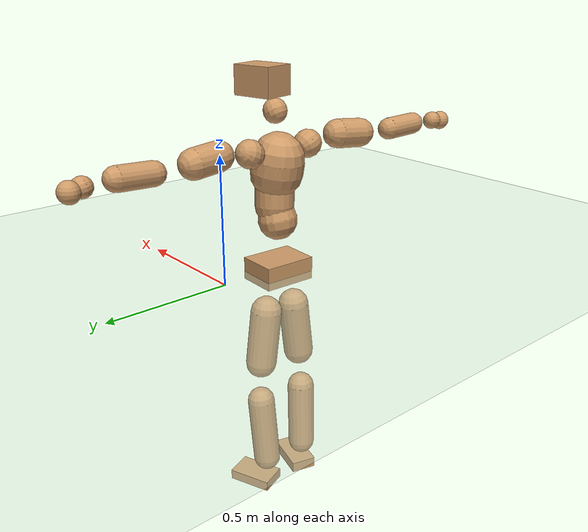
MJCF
<mujoco model="humanoid">
  <compiler coordinate="local" angle="radian"/>
  <default>
    <joint damping="0.0" armature="0.01" stiffness="0.0" limited="true"/>
    <geom conaffinity="1" condim="3" contype="7" margin="0.001" rgba="0.8 0.6 .4 1"/>
  </default>
  <asset>
    <texture type="skybox" builtin="gradient" rgb1=".4 .5 .6" rgb2="0 0 0" width="100" height="100"/>
    <texture builtin="flat" height="1278" mark="cross" markrgb="1 1 1" name="texgeom" random="0.01" rgb1="0.8 0.6 0.4" rgb2="0.8 0.6 0.4" type="cube" width="127"/>
    <texture builtin="checker" height="100" name="texplane" rgb1="0 0 0" rgb2="0.8 0.8 0.8" type="2d" width="100"/>
    <material name="MatPlane" reflectance="0.5" shininess="1" specular="1" texrepeat="60 60" texture="texplane"/>
    <material name="geom" texture="texgeom" texuniform="true"/>
  </asset>
  <worldbody>
    <light cutoff="100" diffuse="1 1 1" dir="-0 0 -1.3" directional="true" exponent="1" pos="0 0 1.3" specular=".1 .1 .1"/>
    <geom conaffinity="1" condim="3" name="floor" pos="0 0 0" rgba="0.8 0.9 0.8 1" size="100 100 .2" type="plane" material="MatPlane"/>
    <body name="Pelvis" pos="-0.0012 -0.2491 0.0201">
      <freejoint name="Pelvis"/>
      <geom type="box" contype="1" conaffinity="1" density="5359.375108" pos="-0.0127 0.0005 -0.0087" size="0.081 0.107 0.0452" quat="0.9998 0.0000 0.0000 -0.0201" name="Pelvis"/>
      <body name="L_Hip" pos="-0.0226 0.0593 -0.0847">
        <joint name="L_Hip_x" type="hinge" pos="0 0 0" axis="1 0 0" stiffness="1600" damping="160" armature="0.02" range="-180.0000 180.0000"/>
        <joint name="L_Hip_y" type="hinge" pos="0 0 0" axis="0 1 0" stiffness="1600" damping="160" armature="0.02" range="-180.0000 180.0000"/>
        <joint name="L_Hip_z" type="hinge" pos="0 0 0" axis="0 0 1" stiffness="1600" damping="160" armature="0.02" range="-180.0000 180.0000"/>
        <geom type="capsule" contype="1" conaffinity="1" density="2040.816327" size="0.0625" fromto="0.0019 0.0109 -0.0918 0.0066 0.0378 -0.3197" name="L_Hip"/>
        <body name="L_Knee" pos="0.0086 0.0487 -0.4115">
          <joint name="L_Knee_x" type="hinge" pos="0 0 0" axis="1 0 0" stiffness="1600" damping="160" armature="0.02" range="-180.0000 180.0000"/>
          <joint name="L_Knee_y" type="hinge" pos="0 0 0" axis="0 1 0" stiffness="1600" damping="160" armature="0.02" range="-180.0000 180.0000"/>
          <joint name="L_Knee_z" type="hinge" pos="0 0 0" axis="0 0 1" stiffness="1600" damping="160" armature="0.02" range="-180.0000 180.0000"/>
          <geom type="capsule" contype="1" conaffinity="1" density="1234.567901" size="0.0561" fromto="-0.0071 -0.0028 -0.0858 -0.0302 -0.0118 -0.3657" name="L_Knee"/>
          <body name="L_Ankle" pos="-0.0373 -0.0146 -0.4515">
            <joint name="L_Ankle_x" type="hinge" pos="0 0 0" axis="1 0 0" stiffness="1600" damping="160" armature="0.02" range="-180.0000 180.0000"/>
            <joint name="L_Ankle_y" type="hinge" pos="0 0 0" axis="0 1 0" stiffness="1600" damping="160" armature="0.02" range="-180.0000 180.0000"/>
            <joint name="L_Ankle_z" type="hinge" pos="0 0 0" axis="0 0 1" stiffness="1600" damping="160" armature="0.02" range="-180.0000 180.0000"/>
            <geom type="box" contype="1" conaffinity="1" density="999.999995" pos="0.0635 0.0243 -0.0323" size="0.0915 0.0564 0.0215" quat="0.9833 0.0000 0.0000 0.1821" name="L_Ankle"/>
            <body name="L_Toe" pos="0.127 0.0487 -0.0647">
              <joint name="L_Toe_x" type="hinge" pos="0 0 0" axis="1 0 0" stiffness="1000" damping="100" armature="0.02" range="-180.0000 180.0000"/>
              <joint name="L_Toe_y" type="hinge" pos="0 0 0" axis="0 1 0" stiffness="1000" damping="100" armature="0.02" range="-180.0000 180.0000"/>
              <joint name="L_Toe_z" type="hinge" pos="0 0 0" axis="0 0 1" stiffness="1000" damping="100" armature="0.02" range="-180.0000 180.0000"/>
              <geom type="box" contype="1" conaffinity="1" density="7786085.638447" pos="0.0000 0.0000 0.0333" size="0.0011 0.0027 0.0011" quat="0.9825 0.0000 0.0000 0.1862" name="L_Toe"/>
            </body>
          </body>
        </body>
      </body>
      <body name="R_Hip" pos="-0.02 -0.0607 -0.0923">
        <joint name="R_Hip_x" type="hinge" pos="0 0 0" axis="1 0 0" stiffness="1600" damping="160" armature="0.02" range="-180.0000 180.0000"/>
        <joint name="R_Hip_y" type="hinge" pos="0 0 0" axis="0 1 0" stiffness="1600" damping="160" armature="0.02" range="-180.0000 180.0000"/>
        <joint name="R_Hip_z" type="hinge" pos="0 0 0" axis="0 0 1" stiffness="1600" damping="160" armature="0.02" range="-180.0000 180.0000"/>
        <geom type="capsule" contype="1" conaffinity="1" density="2040.816327" size="0.0618" fromto="-0.0011 -0.0110 -0.0912 -0.0038 -0.0380 -0.3162" name="R_Hip"/>
        <body name="R_Knee" pos="-0.0049 -0.049 -0.4073">
          <joint name="R_Knee_x" type="hinge" pos="0 0 0" axis="1 0 0" stiffness="1600" damping="160" armature="0.02" range="-180.0000 180.0000"/>
          <joint name="R_Knee_y" type="hinge" pos="0 0 0" axis="0 1 0" stiffness="1600" damping="160" armature="0.02" range="-180.0000 180.0000"/>
          <joint name="R_Knee_z" type="hinge" pos="0 0 0" axis="0 0 1" stiffness="1600" damping="160" armature="0.02" range="-180.0000 180.0000"/>
          <geom type="capsule" contype="1" conaffinity="1" density="1234.567901" size="0.0564" fromto="-0.0067 0.0038 -0.0861 -0.0278 0.0158 -0.3587" name="R_Knee"/>
          <body name="R_Ankle" pos="-0.0345 0.0196 -0.4448">
            <joint name="R_Ankle_x" type="hinge" pos="0 0 0" axis="1 0 0" stiffness="1600" damping="160" armature="0.02" range="-180.0000 180.0000"/>
            <joint name="R_Ankle_y" type="hinge" pos="0 0 0" axis="0 1 0" stiffness="1600" damping="160" armature="0.02" range="-180.0000 180.0000"/>
            <joint name="R_Ankle_z" type="hinge" pos="0 0 0" axis="0 0 1" stiffness="1600" damping="160" armature="0.02" range="-180.0000 180.0000"/>
            <geom type="box" contype="1" conaffinity="1" density="1000.000005" pos="0.0684 -0.0187 -0.0335" size="0.0957 0.0532 0.0227" quat="0.9911 0.0000 0.0000 -0.1329" name="R_Ankle"/>
            <body name="R_Toe" pos="0.1367 -0.0373 -0.067">
              <joint name="R_Toe_x" type="hinge" pos="0 0 0" axis="1 0 0" stiffness="1000" damping="100" armature="0.02" range="-180.0000 180.0000"/>
              <joint name="R_Toe_y" type="hinge" pos="0 0 0" axis="0 1 0" stiffness="1000" damping="100" armature="0.02" range="-180.0000 180.0000"/>
              <joint name="R_Toe_z" type="hinge" pos="0 0 0" axis="0 0 1" stiffness="1000" damping="100" armature="0.02" range="-180.0000 180.0000"/>
              <geom type="box" contype="1" conaffinity="1" density="8234236.923361" pos="0.0000 0.0000 0.0345" size="0.0011 0.0026 0.0012" quat="0.9922 0.0000 0.0000 -0.1244" name="R_Toe"/>
            </body>
          </body>
        </body>
      </body>
      <body name="Torso" pos="-0.0337 0.0045 0.125">
        <joint name="Torso_x" type="hinge" pos="0 0 0" axis="1 0 0" stiffness="2000" damping="200" armature="0.02" range="-180.0000 180.0000"/>
        <joint name="Torso_y" type="hinge" pos="0 0 0" axis="0 1 0" stiffness="2000" damping="200" armature="0.02" range="-180.0000 180.0000"/>
        <joint name="Torso_z" type="hinge" pos="0 0 0" axis="0 0 1" stiffness="2000" damping="200" armature="0.02" range="-180.0000 180.0000"/>
        <geom type="capsule" contype="1" conaffinity="1" density="2040.816327" size="0.0768" fromto="0.0159 0.0023 0.0751 0.0147 0.0021 0.0696" name="Torso"/>
        <body name="Spine" pos="0.0306 0.0044 0.1447">
          <joint name="Spine_x" type="hinge" pos="0 0 0" axis="1 0 0" stiffness="2000" damping="200" armature="0.02" range="-180.0000 180.0000"/>
          <joint name="Spine_y" type="hinge" pos="0 0 0" axis="0 1 0" stiffness="2000" damping="200" armature="0.02" range="-180.0000 180.0000"/>
          <joint name="Spine_z" type="hinge" pos="0 0 0" axis="0 0 1" stiffness="2000" damping="200" armature="0.02" range="-180.0000 180.0000"/>
          <geom type="capsule" contype="1" conaffinity="1" density="2040.816327" size="0.0768" fromto="0.0020 -0.0035 0.0767 -0.0005 0.0008 -0.0175" name="Spine"/>
          <body name="Chest" pos="0.0015 -0.0027 0.0592">
            <joint name="Chest_x" type="hinge" pos="0 0 0" axis="1 0 0" stiffness="2000" damping="200" armature="0.02" range="-180.0000 180.0000"/>
            <joint name="Chest_y" type="hinge" pos="0 0 0" axis="0 1 0" stiffness="2000" damping="200" armature="0.02" range="-180.0000 180.0000"/>
            <joint name="Chest_z" type="hinge" pos="0 0 0" axis="0 0 1" stiffness="2000" damping="200" armature="0.02" range="-180.0000 180.0000"/>
            <geom type="capsule" contype="1" conaffinity="1" density="2040.816327" size="0.102" fromto="-0.0146 -0.0056 0.1008 -0.0076 -0.0029 0.0525" name="Chest"/>
            <body name="Neck" pos="-0.0253 -0.0134 0.2245">
              <joint name="Neck_x" type="hinge" pos="0 0 0" axis="1 0 0" stiffness="1000" damping="100" armature="0.02" range="-180.0000 180.0000"/>
              <joint name="Neck_y" type="hinge" pos="0 0 0" axis="0 1 0" stiffness="1000" damping="100" armature="0.02" range="-180.0000 180.0000"/>
              <joint name="Neck_z" type="hinge" pos="0 0 0" axis="0 0 1" stiffness="1000" damping="100" armature="0.02" range="-180.0000 180.0000"/>
              <geom type="capsule" contype="1" conaffinity="1" density="1000" size="0.0457" fromto="0.0284 0.0051 0.0510 0.0294 0.0053 0.0528" name="Neck"/>
              <body name="Head" pos="0.0578 0.0104 0.1038">
                <joint name="Head_x" type="hinge" pos="0 0 0" axis="1 0 0" stiffness="1000" damping="100" armature="0.02" range="-180.0000 180.0000"/>
                <joint name="Head_y" type="hinge" pos="0 0 0" axis="0 1 0" stiffness="1000" damping="100" armature="0.02" range="-180.0000 180.0000"/>
                <joint name="Head_z" type="hinge" pos="0 0 0" axis="0 0 1" stiffness="1000" damping="100" armature="0.02" range="-180.0000 180.0000"/>
                <geom type="box" contype="1" conaffinity="1" density="2249.9998" pos="0.0299 0.0062 0.0529" size="0.0804 0.0636 0.055" quat="0.9947 0.0000 0.0000 0.1024" name="Head"/>
              </body>
            </body>
            <body name="L_Thorax" pos="-0.0182 0.0726 0.1184">
              <joint name="L_Thorax_x" type="hinge" pos="0 0 0" axis="1 0 0" stiffness="1000" damping="100" armature="0.02" range="-180.0000 180.0000"/>
              <joint name="L_Thorax_y" type="hinge" pos="0 0 0" axis="0 1 0" stiffness="1000" damping="100" armature="0.02" range="-180.0000 180.0000"/>
              <joint name="L_Thorax_z" type="hinge" pos="0 0 0" axis="0 0 1" stiffness="1000" damping="100" armature="0.02" range="-180.0000 180.0000"/>
              <geom type="capsule" contype="1" conaffinity="1" density="1000" size="0.0536" fromto="-0.0084 0.0605 0.0245 -0.0087 0.0623 0.0253" name="L_Thorax"/>
              <body name="L_Shoulder" pos="-0.0171 0.1228 0.0498">
                <joint name="L_Shoulder_x" type="hinge" pos="0 0 0" axis="1 0 0" stiffness="1000" damping="100" armature="0.02" range="-720.0000 720.0000"/>
                <joint name="L_Shoulder_y" type="hinge" pos="0 0 0" axis="0 1 0" stiffness="1000" damping="100" armature="0.02" range="-720.0000 720.0000"/>
                <joint name="L_Shoulder_z" type="hinge" pos="0 0 0" axis="0 0 1" stiffness="1000" damping="100" armature="0.02" range="-720.0000 720.0000"/>
                <geom type="capsule" contype="1" conaffinity="1" density="1000" size="0.055" fromto="-0.0066 0.0845 -0.0063 -0.0150 0.1931 -0.0144" name="L_Shoulder"/>
                <body name="L_Elbow" pos="-0.0216 0.2777 -0.0207">
                  <joint name="L_Elbow_x" type="hinge" pos="0 0 0" axis="1 0 0" stiffness="1000" damping="100" armature="0.02" range="-720.0000 720.0000"/>
                  <joint name="L_Elbow_y" type="hinge" pos="0 0 0" axis="0 1 0" stiffness="1000" damping="100" armature="0.02" range="-720.0000 720.0000"/>
                  <joint name="L_Elbow_z" type="hinge" pos="0 0 0" axis="0 0 1" stiffness="1000" damping="100" armature="0.02" range="-720.0000 720.0000"/>
                  <geom type="capsule" contype="1" conaffinity="1" density="1000" size="0.0426" fromto="-0.0020 0.0725 0.0036 -0.0058 0.2084 0.0103" name="L_Elbow"/>
                  <body name="L_Wrist" pos="-0.0078 0.2809 0.0139">
                    <joint name="L_Wrist_x" type="hinge" pos="0 0 0" axis="1 0 0" stiffness="600" damping="60" armature="0.02" range="-180.0000 180.0000"/>
                    <joint name="L_Wrist_y" type="hinge" pos="0 0 0" axis="0 1 0" stiffness="600" damping="60" armature="0.02" range="-180.0000 180.0000"/>
                    <joint name="L_Wrist_z" type="hinge" pos="0 0 0" axis="0 0 1" stiffness="600" damping="60" armature="0.02" range="-180.0000 180.0000"/>
                    <geom type="capsule" contype="1" conaffinity="1" density="1000" size="0.0353" fromto="-0.0081 0.0443 -0.0054 -0.0084 0.0462 -0.0057" name="L_Wrist"/>
                    <body name="L_Hand" pos="-0.0165 0.0905 -0.0111">
                      <joint name="L_Hand_x" type="hinge" pos="0 0 0" axis="1 0 0" stiffness="600" damping="60" armature="0.02" range="-180.0000 180.0000"/>
                      <joint name="L_Hand_y" type="hinge" pos="0 0 0" axis="0 1 0" stiffness="600" damping="60" armature="0.02" range="-180.0000 180.0000"/>
                      <joint name="L_Hand_z" type="hinge" pos="0 0 0" axis="0 0 1" stiffness="600" damping="60" armature="0.02" range="-180.0000 180.0000"/>
                      <geom type="sphere" contype="1" conaffinity="1" density="1000" size="0.0371" pos="0.0000 0.0000 0.0000" name="L_Hand"/>
                    </body>
                  </body>
                </body>
              </body>
            </body>
            <body name="R_Thorax" pos="-0.0229 -0.0847 0.1169">
              <joint name="R_Thorax_x" type="hinge" pos="0 0 0" axis="1 0 0" stiffness="1000" damping="100" armature="0.02" range="-180.0000 180.0000"/>
              <joint name="R_Thorax_y" type="hinge" pos="0 0 0" axis="0 1 0" stiffness="1000" damping="100" armature="0.02" range="-180.0000 180.0000"/>
              <joint name="R_Thorax_z" type="hinge" pos="0 0 0" axis="0 0 1" stiffness="1000" damping="100" armature="0.02" range="-180.0000 180.0000"/>
              <geom type="capsule" contype="1" conaffinity="1" density="1000" size="0.0541" fromto="-0.0031 -0.0566 0.0255 -0.0032 -0.0584 0.0263" name="R_Thorax"/>
              <body name="R_Shoulder" pos="-0.0062 -0.115 0.0518">
                <joint name="R_Shoulder_x" type="hinge" pos="0 0 0" axis="1 0 0" stiffness="1000" damping="100" armature="0.02" range="-720.0000 720.0000"/>
                <joint name="R_Shoulder_y" type="hinge" pos="0 0 0" axis="0 1 0" stiffness="1000" damping="100" armature="0.02" range="-720.0000 720.0000"/>
                <joint name="R_Shoulder_z" type="hinge" pos="0 0 0" axis="0 0 1" stiffness="1000" damping="100" armature="0.02" range="-720.0000 720.0000"/>
                <geom type="capsule" contype="1" conaffinity="1" density="1000" size="0.0566" fromto="-0.0092 -0.0858 -0.0067 -0.0211 -0.1957 -0.0153" name="R_Shoulder"/>
                <body name="R_Elbow" pos="-0.0303 -0.2815 -0.022">
                  <joint name="R_Elbow_x" type="hinge" pos="0 0 0" axis="1 0 0" stiffness="1000" damping="100" armature="0.02" range="-720.0000 720.0000"/>
                  <joint name="R_Elbow_y" type="hinge" pos="0 0 0" axis="0 1 0" stiffness="1000" damping="100" armature="0.02" range="-720.0000 720.0000"/>
                  <joint name="R_Elbow_z" type="hinge" pos="0 0 0" axis="0 0 1" stiffness="1000" damping="100" armature="0.02" range="-720.0000 720.0000"/>
                  <geom type="capsule" contype="1" conaffinity="1" density="1000" size="0.0436" fromto="-0.0016 -0.0736 0.0025 -0.0046 -0.2144 0.0072" name="R_Elbow"/>
                  <body name="R_Wrist" pos="-0.0062 -0.288 0.0097">
                    <joint name="R_Wrist_x" type="hinge" pos="0 0 0" axis="1 0 0" stiffness="600" damping="60" armature="0.02" range="-180.0000 180.0000"/>
                    <joint name="R_Wrist_y" type="hinge" pos="0 0 0" axis="0 1 0" stiffness="600" damping="60" armature="0.02" range="-180.0000 180.0000"/>
                    <joint name="R_Wrist_z" type="hinge" pos="0 0 0" axis="0 0 1" stiffness="600" damping="60" armature="0.02" range="-180.0000 180.0000"/>
                    <geom type="capsule" contype="1" conaffinity="1" density="1000" size="0.0361" fromto="-0.0053 -0.0455 -0.0044 -0.0055 -0.0475 -0.0046" name="R_Wrist"/>
                    <body name="R_Hand" pos="-0.0108 -0.0929 -0.009">
                      <joint name="R_Hand_x" type="hinge" pos="0 0 0" axis="1 0 0" stiffness="600" damping="60" armature="0.02" range="-180.0000 180.0000"/>
                      <joint name="R_Hand_y" type="hinge" pos="0 0 0" axis="0 1 0" stiffness="600" damping="60" armature="0.02" range="-180.0000 180.0000"/>
                      <joint name="R_Hand_z" type="hinge" pos="0 0 0" axis="0 0 1" stiffness="600" damping="60" armature="0.02" range="-180.0000 180.0000"/>
                      <geom type="sphere" contype="1" conaffinity="1" density="1000" size="0.0377" pos="0.0000 0.0000 0.0000" name="R_Hand"/>
                    </body>
                  </body>
                </body>
              </body>
            </body>
          </body>
        </body>
      </body>
    </body>
  </worldbody>
  <actuator>
    <motor name="L_Hip_x" joint="L_Hip_x" gear="500"/>
    <motor name="L_Hip_y" joint="L_Hip_y" gear="500"/>
    <motor name="L_Hip_z" joint="L_Hip_z" gear="500"/>
    <motor name="L_Knee_x" joint="L_Knee_x" gear="500"/>
    <motor name="L_Knee_y" joint="L_Knee_y" gear="500"/>
    <motor name="L_Knee_z" joint="L_Knee_z" gear="500"/>
    <motor name="L_Ankle_x" joint="L_Ankle_x" gear="500"/>
    <motor name="L_Ankle_y" joint="L_Ankle_y" gear="500"/>
    <motor name="L_Ankle_z" joint="L_Ankle_z" gear="500"/>
    <motor name="L_Toe_x" joint="L_Toe_x" gear="500"/>
    <motor name="L_Toe_y" joint="L_Toe_y" gear="500"/>
    <motor name="L_Toe_z" joint="L_Toe_z" gear="500"/>
    <motor name="R_Hip_x" joint="R_Hip_x" gear="500"/>
    <motor name="R_Hip_y" joint="R_Hip_y" gear="500"/>
    <motor name="R_Hip_z" joint="R_Hip_z" gear="500"/>
    <motor name="R_Knee_x" joint="R_Knee_x" gear="500"/>
    <motor name="R_Knee_y" joint="R_Knee_y" gear="500"/>
    <motor name="R_Knee_z" joint="R_Knee_z" gear="500"/>
    <motor name="R_Ankle_x" joint="R_Ankle_x" gear="500"/>
    <motor name="R_Ankle_y" joint="R_Ankle_y" gear="500"/>
    <motor name="R_Ankle_z" joint="R_Ankle_z" gear="500"/>
    <motor name="R_Toe_x" joint="R_Toe_x" gear="500"/>
    <motor name="R_Toe_y" joint="R_Toe_y" gear="500"/>
    <motor name="R_Toe_z" joint="R_Toe_z" gear="500"/>
    <motor name="Torso_x" joint="Torso_x" gear="500"/>
    <motor name="Torso_y" joint="Torso_y" gear="500"/>
    <motor name="Torso_z" joint="Torso_z" gear="500"/>
    <motor name="Spine_x" joint="Spine_x" gear="500"/>
    <motor name="Spine_y" joint="Spine_y" gear="500"/>
    <motor name="Spine_z" joint="Spine_z" gear="500"/>
    <motor name="Chest_x" joint="Chest_x" gear="500"/>
    <motor name="Chest_y" joint="Chest_y" gear="500"/>
    <motor name="Chest_z" joint="Chest_z" gear="500"/>
    <motor name="Neck_x" joint="Neck_x" gear="500"/>
    <motor name="Neck_y" joint="Neck_y" gear="500"/>
    <motor name="Neck_z" joint="Neck_z" gear="500"/>
    <motor name="Head_x" joint="Head_x" gear="500"/>
    <motor name="Head_y" joint="Head_y" gear="500"/>
    <motor name="Head_z" joint="Head_z" gear="500"/>
    <motor name="L_Thorax_x" joint="L_Thorax_x" gear="500"/>
    <motor name="L_Thorax_y" joint="L_Thorax_y" gear="500"/>
    <motor name="L_Thorax_z" joint="L_Thorax_z" gear="500"/>
    <motor name="L_Shoulder_x" joint="L_Shoulder_x" gear="500"/>
    <motor name="L_Shoulder_y" joint="L_Shoulder_y" gear="500"/>
    <motor name="L_Shoulder_z" joint="L_Shoulder_z" gear="500"/>
    <motor name="L_Elbow_x" joint="L_Elbow_x" gear="500"/>
    <motor name="L_Elbow_y" joint="L_Elbow_y" gear="500"/>
    <motor name="L_Elbow_z" joint="L_Elbow_z" gear="500"/>
    <motor name="L_Wrist_x" joint="L_Wrist_x" gear="500"/>
    <motor name="L_Wrist_y" joint="L_Wrist_y" gear="500"/>
    <motor name="L_Wrist_z" joint="L_Wrist_z" gear="500"/>
    <motor name="L_Hand_x" joint="L_Hand_x" gear="500"/>
    <motor name="L_Hand_y" joint="L_Hand_y" gear="500"/>
    <motor name="L_Hand_z" joint="L_Hand_z" gear="500"/>
    <motor name="R_Thorax_x" joint="R_Thorax_x" gear="500"/>
    <motor name="R_Thorax_y" joint="R_Thorax_y" gear="500"/>
    <motor name="R_Thorax_z" joint="R_Thorax_z" gear="500"/>
    <motor name="R_Shoulder_x" joint="R_Shoulder_x" gear="500"/>
    <motor name="R_Shoulder_y" joint="R_Shoulder_y" gear="500"/>
    <motor name="R_Shoulder_z" joint="R_Shoulder_z" gear="500"/>
    <motor name="R_Elbow_x" joint="R_Elbow_x" gear="500"/>
    <motor name="R_Elbow_y" joint="R_Elbow_y" gear="500"/>
    <motor name="R_Elbow_z" joint="R_Elbow_z" gear="500"/>
    <motor name="R_Wrist_x" joint="R_Wrist_x" gear="500"/>
    <motor name="R_Wrist_y" joint="R_Wrist_y" gear="500"/>
    <motor name="R_Wrist_z" joint="R_Wrist_z" gear="500"/>
    <motor name="R_Hand_x" joint="R_Hand_x" gear="500"/>
    <motor name="R_Hand_y" joint="R_Hand_y" gear="500"/>
    <motor name="R_Hand_z" joint="R_Hand_z" gear="500"/>
  </actuator>
  <contact>
    <exclude body1="Torso" body2="Chest"/>
    <exclude body1="Head" body2="Chest"/>
    <exclude body1="R_Knee" body2="R_Toe"/>
    <exclude body1="R_Knee" body2="L_Ankle"/>
    <exclude body1="R_Knee" body2="L_Toe"/>
    <exclude body1="L_Knee" body2="L_Toe"/>
    <exclude body1="L_Knee" body2="R_Ankle"/>
    <exclude body1="L_Knee" body2="R_Toe"/>
    <exclude body1="L_Shoulder" body2="Chest"/>
    <exclude body1="R_Shoulder" body2="Chest"/>
  </contact>
  <sensor/>
  <size njmax="700" nconmax="700"/>
</mujoco>
